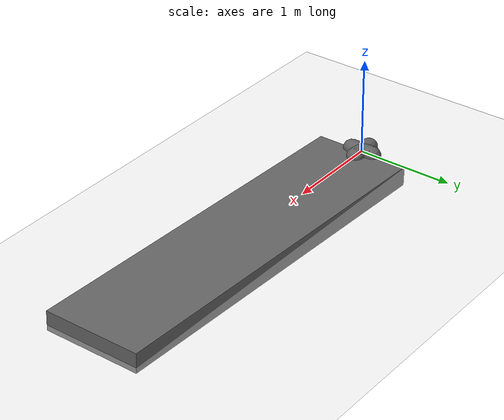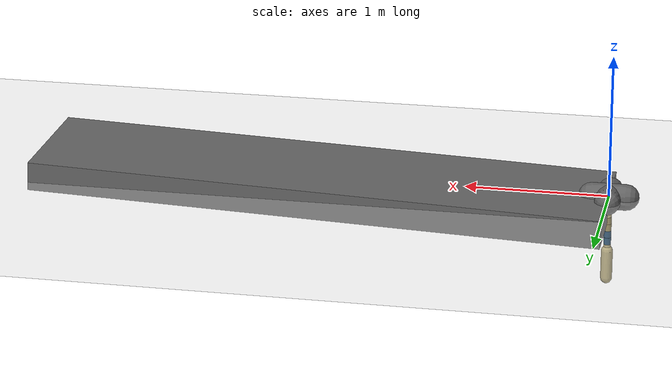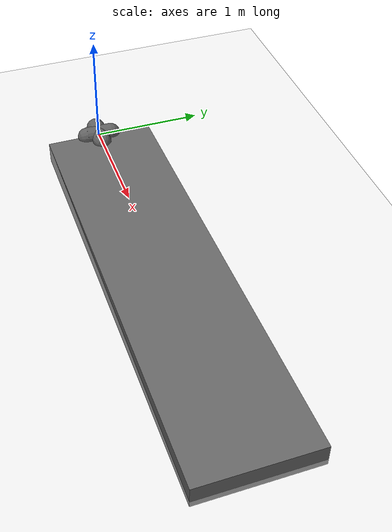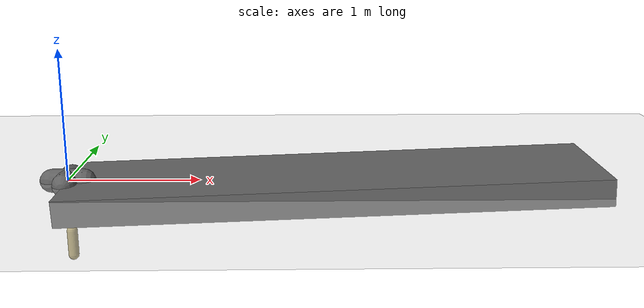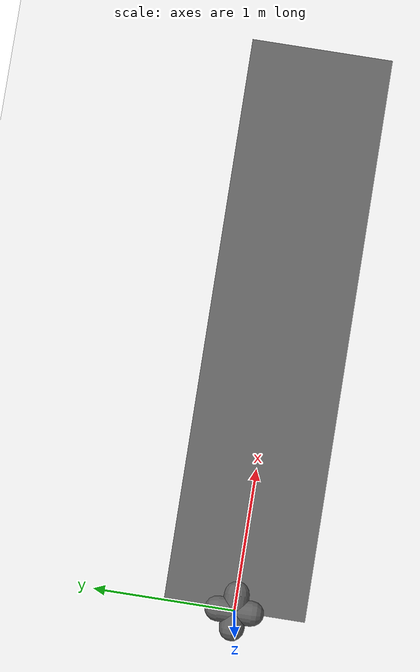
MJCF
<?xml version='1.0' encoding='utf-8'?>
<mujoco model="Leg">

    <default>
      <joint limited="true" damping="1" armature="0"/>
      <geom conaffinity="0" contype="0"/>
      <motor ctrllimited="false"/>
    </default>

    <option timestep="0.0001" iterations="50" tolerance="1e-10" solver="Newton" jacobian="dense" cone="pyramidal"/>

    <size nconmax="50" njmax="200" nstack="10000"/>

    <visual>
        <map force="0.1" zfar="30"/>
        <rgba haze="0.15 0.25 0.35 1"/>
        <quality shadowsize="2048"/>
        <global offwidth="800" offheight="800"/>
    </visual>

    <asset>
        <texture type="skybox" builtin="gradient" rgb1="0.3 0.5 0.7" rgb2="0 0 0" width="512" height="512"/>

        <texture name="texplane" type="2d" builtin="checker" rgb1=".9 .9 .9" rgb2=".85 0.85 0.85" width="512" height="512" mark="cross" markrgb=".8 .8 .8"/>

        <texture name="texgeom" type="cube" builtin="flat" mark="cross" width="127" height="1278"
            rgb1="0.8 0.6 0.4" rgb2="0.8 0.6 0.4"
            markrgb="1 1 1" random="0.01"/>

        <texture name="crossgeom" type="cube" builtin="checker" width="127" height="127"
        rgb1="1 1 1" rgb2="0.9 0.9 0.9"
        mark="cross" markrgb="0.5 0.5 0.5" />

        <material name="matplane" reflectance="0.3" texture="texplane" texrepeat="1 1" texuniform="true"/>

        <material name="matgeom" texture="texgeom" texuniform="true" rgba="0.8 0.6 .4 1"/>
        <material name="tech gold" rgba="0.702 0.639 0.412 1"/>
        <material name="dark gold" rgba="0.521 0.455 0.216 1"/>
        <material name="light gold" rgba="0.749 0.702 0.486 1"/>
        <material name="navy blue" rgba="0 0.188 0.341 1"/>
        <material name="grey" texture="crossgeom" texuniform="true" rgba="0.4 0.4 0.4 1" />
    </asset>

    <worldbody>
        <geom name="floor" conaffinity="1" condim="6" pos="0 0 0" quat="1 0 0 0" size="0 0 .25" type="plane" material="matplane"/>
        <geom name="ramp" conaffinity="1" condim="6" friction="1 0.005 0.0001" type="box" pos="2.0 0 -0.03" size="2 0.5 0.1" rgba="0.4 0.4 0.4 1" euler="0 -2 0" group="2"/>

            <light mode="targetbodycom" target="base" directional="false" diffuse=".5 .5 .5" specular="0.8 0.8 0.8" pos="0 0 4.0" dir="0 0 -1" castshadow="false" />
    </worldbody>

    <worldbody>
        <body name="base" pos="0 0 0">

        <joint name="rootx" limited="false" type="slide" stiffness="0" damping="0" frictionloss="0" axis="1 0 0" />
        <joint name="rooty" limited="false" type="slide" stiffness="0" damping="0" frictionloss="0" axis="0 1 0" />
        <joint name="rootz" limited="false" type="slide" stiffness="0" damping="0" frictionloss="0" axis="0 0 1" />
        <joint name="rootroll" limited="false" type="hinge" stiffness="0" damping="0" frictionloss="0" axis="1 0 0" />
        <joint name="rootpitch" limited="false" type="hinge" stiffness="0" damping="0" frictionloss="0" axis="0 1 0" />
        <joint name="rootyaw" limited="false" type="hinge" stiffness="0" damping="0" frictionloss="0" axis="0 0 1" />
            <geom name="torso" type="capsule" fromto="-0.12 0 0 0.12 0 0" size="0.09" mass="7.5" material="grey" />
            <geom name="torso2" type="capsule" fromto="0 -0.12 0 0 0.12 0" size="0.09" mass="7.5" material="grey" />
            <site group="0" name="base" pos="0 0 0" quat="1 0 0 0" size="0.04" rgba="1 1 1 0" />
            <body name="leg" pos="0 0 0">
                <site group="2" name="leg" pos="0 0 0" quat="1 0 0 0" size="0.06" rgba="1 1 1 0" />
                <joint name="hip_y" type="hinge" pos="0 0 0" axis="0 1 0" range="-70 70" damping="20" stiffness="20" />
                <joint name="hip_x" type="hinge" pos="0 0 0" axis="1 0 0" range="-70 70" damping="20" stiffness="20" />
                <geom name="leg" type="capsule" fromto="0 0 0 0 0 -.05" size="0.03" density="1000" material="grey" />
                <!-- Start of Material 1 -->
                <geom name="mat1_1" type="capsule" fromto="0 0 -0.05 0 0 -.1" size="0.025" density="1390" material="tech gold" />
                <body name="mat1" pos="0 0 -0.1">
                    <joint name="mat_spring1" axis="0 0 -1" type="slide" pos="0 0 0" stiffness="3E6" limited="false" />
                    <geom name="mat1_2" type="capsule" fromto="0 0 0 0 0 -.05" size="0.025" density="1390" material="tech gold" />
                    <!-- Start of Material 2 -->
                    <geom name="mat2_1" type="capsule" fromto="0 0 -0.05 0 0 -.1" size="0.025" density="1390" material="dark gold" />
                    <body name="mat2" pos="0 0 -0.1">
                        <joint name="mat_spring2" axis="0 0 -1" type="slide" pos="0 0 0" stiffness="3E6" limited="false" />
                        <geom name="mat2_2" type="capsule" fromto="0 0 0 0 0 -.05" size="0.025" density="1390" material="dark gold" />
                        <geom name="mat3_1" type="capsule" fromto="0 0 -0.05 0 0 -.1" size="0.025" density="1390" material="navy blue" />
                        <!-- Start of Material 3 -->
                        <body name="mat3" pos="0 0 -0.1">
                            <joint name="mat_spring3" axis="0 0 -1" type="slide" pos="0 0 0" stiffness="3E6" limited="false" />
                            <geom name="mat3_2" type="capsule" fromto="0 0 0 0 0 -.05" size="0.025" density="1390" material="navy blue" />
                            <geom name="foot_upper" type="capsule" fromto="0 0 -0.05 0 0 -.1" size="0.025" density="1000" material="tech gold" />
                            <!-- Start of Foot -->
                            <body name="foot_lower" pos="0 0 -0.1">
                                <joint name="spring" axis="0 0 -1" type="slide" pos="0 0 0" limited="true" range="-0.1 0.1" stiffness="8000" damping="10" />
                                <geom name="foot_lower" type="capsule" fromto="0 0 0 0 0 -.2" size="0.04" mass="0.5" conaffinity="1" contype="1" condim="6" material="tech gold" />
                                <site group="2" name="toe" pos="0 0 -0.2" quat="1 0 0 0" size="0.04" rgba="1 1 1 0" />
                            </body>
                        </body>
                    </body>
                </body>
            </body>
        </body>
    </worldbody>

    <actuator>
        <motor name="hip_y" gear="600" joint="hip_y" />
        <motor name="hip_x" gear="600" joint="hip_x" />
        <motor name="spring" joint="spring" />
    </actuator>

    <sensor>
        <touch name="toeGRF" site="toe" />
        <framepos name="basepos" objtype="site" objname="base" />
        <framequat name="basequat" objtype="site" objname="base" />
        <gyro name="basegyro" site="base" />
        <framelinvel name="basevel" objtype="site" objname="base" />
        <torque name="hip_torque" site="leg" />
        <accelerometer name="baseaccel" site="base" />
    </sensor>

</mujoco>
